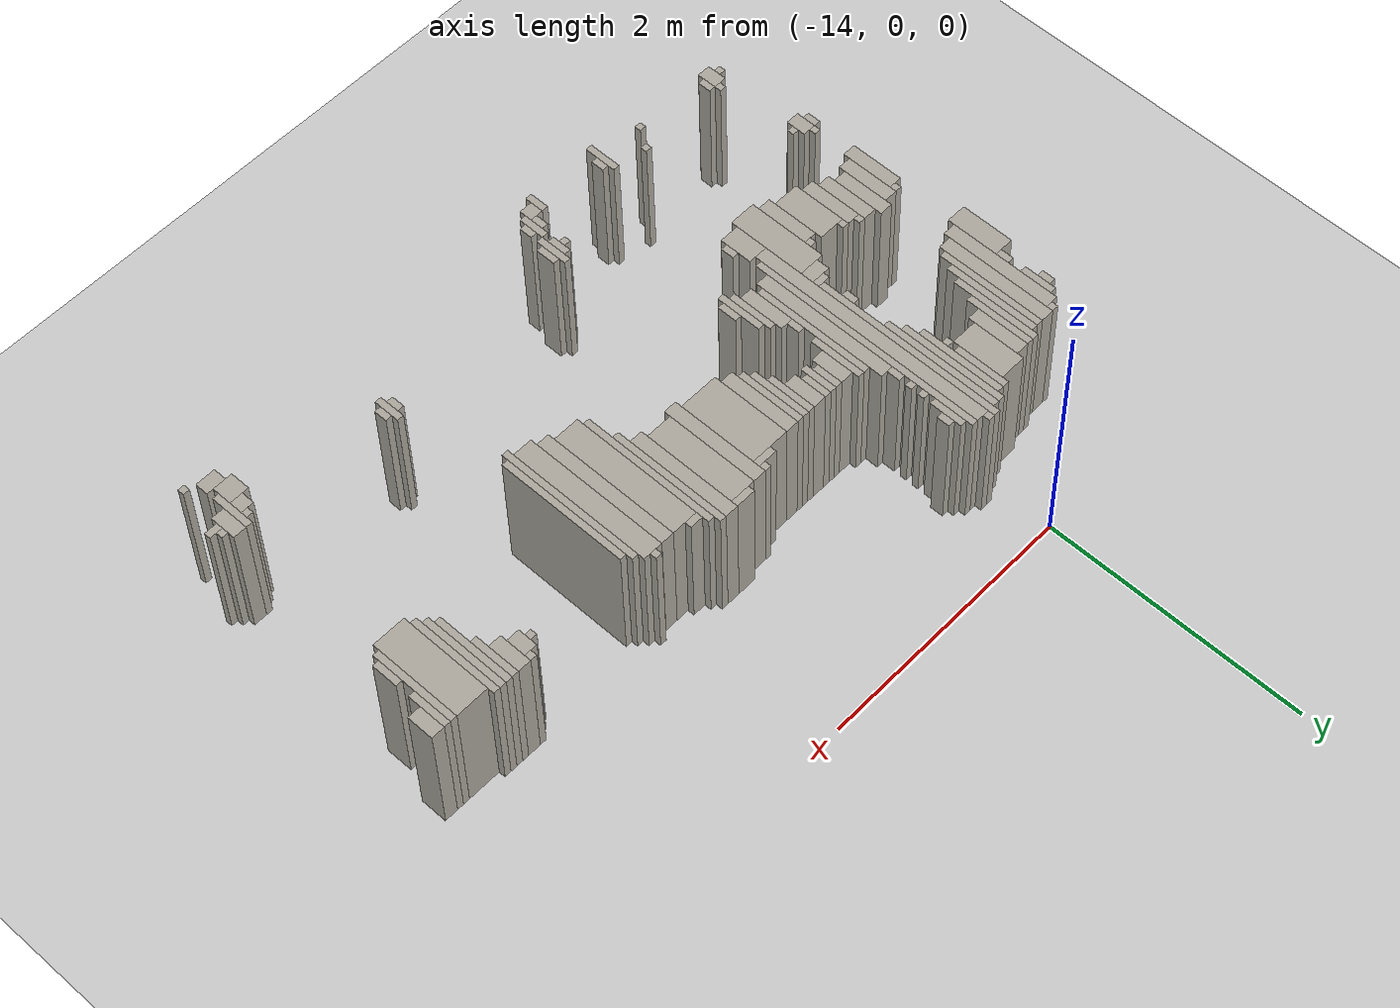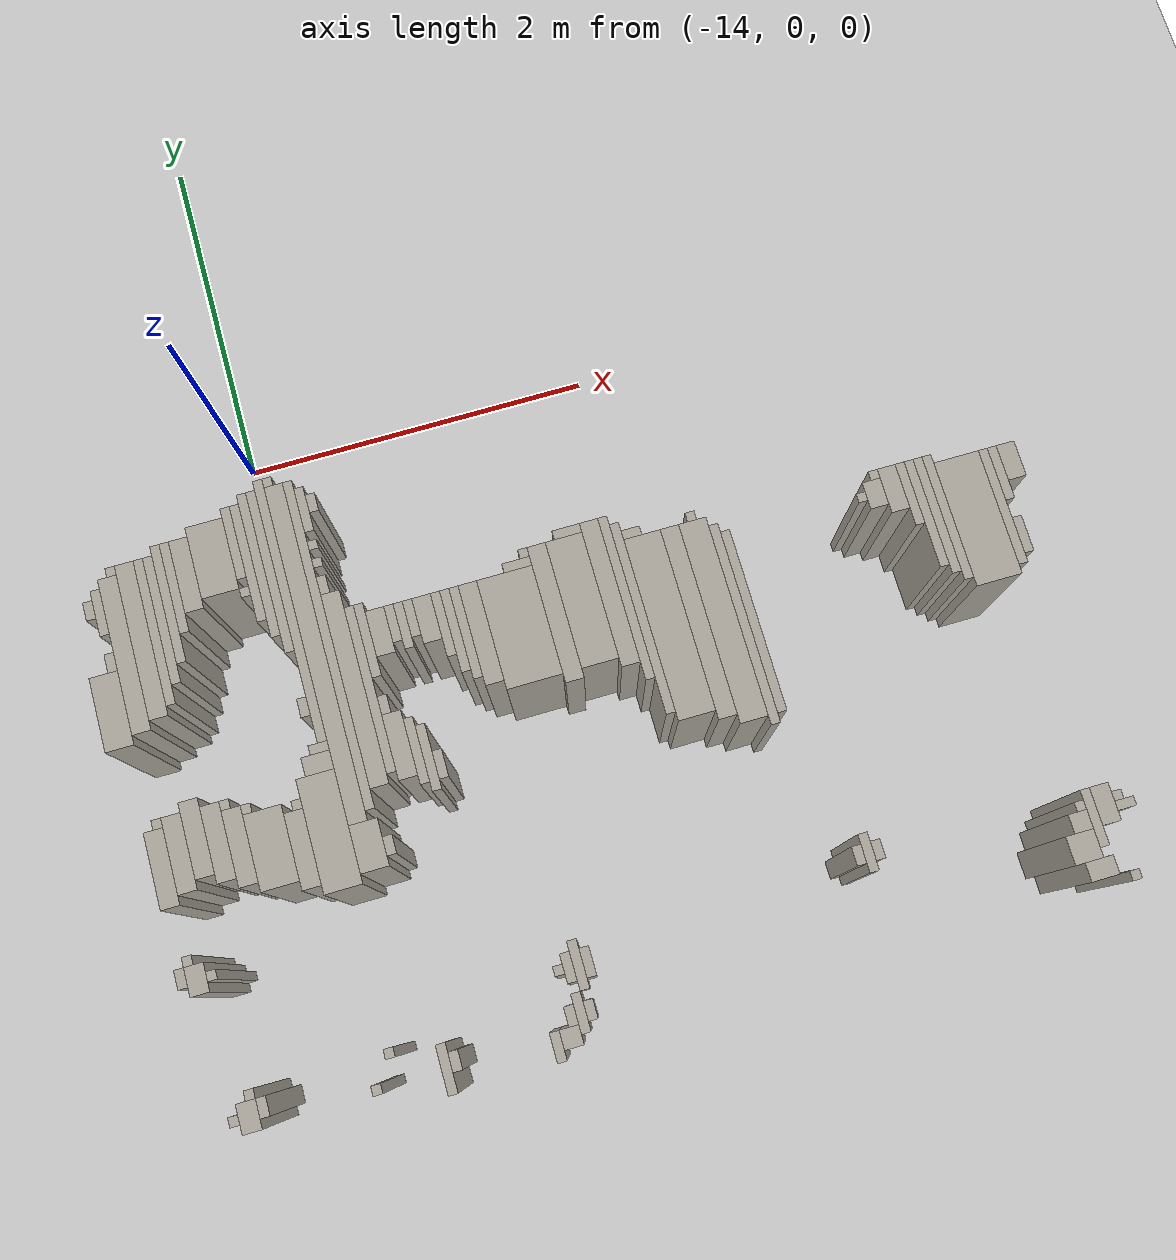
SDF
<sdf version="1.6">
 <world name="fr079_office">
  <include><uri>model://sun</uri></include>
  <include><uri>model://ground_plane</uri></include>
  <model name="fr079_office_walls">
   <static>true</static>
   <link name="w1039">
    <pose>-13.673 -3.581 0.500 0 0 0</pose>
    <collision name="c"><geometry><box><size>0.050 0.250 1.000</size></box></geometry></collision>
    <visual name="v">
     <geometry><box><size>0.050 0.250 1.000</size></box></geometry>
     <material><ambient>0.68 0.66 0.62 1</ambient><diffuse>0.68 0.66 0.62 1</diffuse></material>
    </visual>
   </link>
   <link name="w1040">
    <pose>-13.123 -3.631 0.500 0 0 0</pose>
    <collision name="c"><geometry><box><size>0.050 0.150 1.000</size></box></geometry></collision>
    <visual name="v">
     <geometry><box><size>0.050 0.150 1.000</size></box></geometry>
     <material><ambient>0.68 0.66 0.62 1</ambient><diffuse>0.68 0.66 0.62 1</diffuse></material>
    </visual>
   </link>
   <link name="w1054">
    <pose>-13.048 -3.606 0.500 0 0 0</pose>
    <collision name="c"><geometry><box><size>0.100 0.100 1.000</size></box></geometry></collision>
    <visual name="v">
     <geometry><box><size>0.100 0.100 1.000</size></box></geometry>
     <material><ambient>0.68 0.66 0.62 1</ambient><diffuse>0.68 0.66 0.62 1</diffuse></material>
    </visual>
   </link>
   <link name="w1055">
    <pose>-10.123 -3.631 0.500 0 0 0</pose>
    <collision name="c"><geometry><box><size>0.050 0.050 1.000</size></box></geometry></collision>
    <visual name="v">
     <geometry><box><size>0.050 0.050 1.000</size></box></geometry>
     <material><ambient>0.68 0.66 0.62 1</ambient><diffuse>0.68 0.66 0.62 1</diffuse></material>
    </visual>
   </link>
   <link name="w1061">
    <pose>-14.648 -3.531 0.500 0 0 0</pose>
    <collision name="c"><geometry><box><size>0.100 0.150 1.000</size></box></geometry></collision>
    <visual name="v">
     <geometry><box><size>0.100 0.150 1.000</size></box></geometry>
     <material><ambient>0.68 0.66 0.62 1</ambient><diffuse>0.68 0.66 0.62 1</diffuse></material>
    </visual>
   </link>
   <link name="w1062">
    <pose>-14.023 -3.581 0.500 0 0 0</pose>
    <collision name="c"><geometry><box><size>0.050 0.050 1.000</size></box></geometry></collision>
    <visual name="v">
     <geometry><box><size>0.050 0.050 1.000</size></box></geometry>
     <material><ambient>0.68 0.66 0.62 1</ambient><diffuse>0.68 0.66 0.62 1</diffuse></material>
    </visual>
   </link>
   <link name="w1063">
    <pose>-13.623 -3.556 0.500 0 0 0</pose>
    <collision name="c"><geometry><box><size>0.050 0.100 1.000</size></box></geometry></collision>
    <visual name="v">
     <geometry><box><size>0.050 0.100 1.000</size></box></geometry>
     <material><ambient>0.68 0.66 0.62 1</ambient><diffuse>0.68 0.66 0.62 1</diffuse></material>
    </visual>
   </link>
   <link name="w1064">
    <pose>-12.973 -3.506 0.500 0 0 0</pose>
    <collision name="c"><geometry><box><size>0.050 0.200 1.000</size></box></geometry></collision>
    <visual name="v">
     <geometry><box><size>0.050 0.200 1.000</size></box></geometry>
     <material><ambient>0.68 0.66 0.62 1</ambient><diffuse>0.68 0.66 0.62 1</diffuse></material>
    </visual>
   </link>
   <link name="w1065">
    <pose>-10.273 -3.556 0.500 0 0 0</pose>
    <collision name="c"><geometry><box><size>0.150 0.100 1.000</size></box></geometry></collision>
    <visual name="v">
     <geometry><box><size>0.150 0.100 1.000</size></box></geometry>
     <material><ambient>0.68 0.66 0.62 1</ambient><diffuse>0.68 0.66 0.62 1</diffuse></material>
    </visual>
   </link>
   <link name="w1073">
    <pose>-14.723 -3.531 0.500 0 0 0</pose>
    <collision name="c"><geometry><box><size>0.050 0.050 1.000</size></box></geometry></collision>
    <visual name="v">
     <geometry><box><size>0.050 0.050 1.000</size></box></geometry>
     <material><ambient>0.68 0.66 0.62 1</ambient><diffuse>0.68 0.66 0.62 1</diffuse></material>
    </visual>
   </link>
   <link name="w1074">
    <pose>-14.573 -3.506 0.500 0 0 0</pose>
    <collision name="c"><geometry><box><size>0.050 0.100 1.000</size></box></geometry></collision>
    <visual name="v">
     <geometry><box><size>0.050 0.100 1.000</size></box></geometry>
     <material><ambient>0.68 0.66 0.62 1</ambient><diffuse>0.68 0.66 0.62 1</diffuse></material>
    </visual>
   </link>
   <link name="w1075">
    <pose>-13.023 -3.506 0.500 0 0 0</pose>
    <collision name="c"><geometry><box><size>0.050 0.100 1.000</size></box></geometry></collision>
    <visual name="v">
     <geometry><box><size>0.050 0.100 1.000</size></box></geometry>
     <material><ambient>0.68 0.66 0.62 1</ambient><diffuse>0.68 0.66 0.62 1</diffuse></material>
    </visual>
   </link>
   <link name="w1076">
    <pose>-12.923 -3.506 0.500 0 0 0</pose>
    <collision name="c"><geometry><box><size>0.050 0.100 1.000</size></box></geometry></collision>
    <visual name="v">
     <geometry><box><size>0.050 0.100 1.000</size></box></geometry>
     <material><ambient>0.68 0.66 0.62 1</ambient><diffuse>0.68 0.66 0.62 1</diffuse></material>
    </visual>
   </link>
   <link name="w1079">
    <pose>-10.323 -3.431 0.500 0 0 0</pose>
    <collision name="c"><geometry><box><size>0.150 0.150 1.000</size></box></geometry></collision>
    <visual name="v">
     <geometry><box><size>0.150 0.150 1.000</size></box></geometry>
     <material><ambient>0.68 0.66 0.62 1</ambient><diffuse>0.68 0.66 0.62 1</diffuse></material>
    </visual>
   </link>
   <link name="w1086">
    <pose>-14.623 -3.431 0.500 0 0 0</pose>
    <collision name="c"><geometry><box><size>0.050 0.050 1.000</size></box></geometry></collision>
    <visual name="v">
     <geometry><box><size>0.050 0.050 1.000</size></box></geometry>
     <material><ambient>0.68 0.66 0.62 1</ambient><diffuse>0.68 0.66 0.62 1</diffuse></material>
    </visual>
   </link>
   <link name="w1087">
    <pose>-13.923 -3.431 0.500 0 0 0</pose>
    <collision name="c"><geometry><box><size>0.050 0.050 1.000</size></box></geometry></collision>
    <visual name="v">
     <geometry><box><size>0.050 0.050 1.000</size></box></geometry>
     <material><ambient>0.68 0.66 0.62 1</ambient><diffuse>0.68 0.66 0.62 1</diffuse></material>
    </visual>
   </link>
   <link name="w1088">
    <pose>-10.223 -3.306 0.500 0 0 0</pose>
    <collision name="c"><geometry><box><size>0.050 0.300 1.000</size></box></geometry></collision>
    <visual name="v">
     <geometry><box><size>0.050 0.300 1.000</size></box></geometry>
     <material><ambient>0.68 0.66 0.62 1</ambient><diffuse>0.68 0.66 0.62 1</diffuse></material>
    </visual>
   </link>
   <link name="w1094">
    <pose>-12.923 -3.281 0.500 0 0 0</pose>
    <collision name="c"><geometry><box><size>0.050 0.250 1.000</size></box></geometry></collision>
    <visual name="v">
     <geometry><box><size>0.050 0.250 1.000</size></box></geometry>
     <material><ambient>0.68 0.66 0.62 1</ambient><diffuse>0.68 0.66 0.62 1</diffuse></material>
    </visual>
   </link>
   <link name="w1099">
    <pose>-12.973 -3.281 0.500 0 0 0</pose>
    <collision name="c"><geometry><box><size>0.050 0.150 1.000</size></box></geometry></collision>
    <visual name="v">
     <geometry><box><size>0.050 0.150 1.000</size></box></geometry>
     <material><ambient>0.68 0.66 0.62 1</ambient><diffuse>0.68 0.66 0.62 1</diffuse></material>
    </visual>
   </link>
   <link name="w1100">
    <pose>-12.873 -3.281 0.500 0 0 0</pose>
    <collision name="c"><geometry><box><size>0.050 0.150 1.000</size></box></geometry></collision>
    <visual name="v">
     <geometry><box><size>0.050 0.150 1.000</size></box></geometry>
     <material><ambient>0.68 0.66 0.62 1</ambient><diffuse>0.68 0.66 0.62 1</diffuse></material>
    </visual>
   </link>
   <link name="w1101">
    <pose>-10.298 -3.306 0.500 0 0 0</pose>
    <collision name="c"><geometry><box><size>0.100 0.100 1.000</size></box></geometry></collision>
    <visual name="v">
     <geometry><box><size>0.100 0.100 1.000</size></box></geometry>
     <material><ambient>0.68 0.66 0.62 1</ambient><diffuse>0.68 0.66 0.62 1</diffuse></material>
    </visual>
   </link>
   <link name="w1102">
    <pose>-10.148 -3.256 0.500 0 0 0</pose>
    <collision name="c"><geometry><box><size>0.100 0.200 1.000</size></box></geometry></collision>
    <visual name="v">
     <geometry><box><size>0.100 0.200 1.000</size></box></geometry>
     <material><ambient>0.68 0.66 0.62 1</ambient><diffuse>0.68 0.66 0.62 1</diffuse></material>
    </visual>
   </link>
   <link name="w1107">
    <pose>-13.023 -3.281 0.500 0 0 0</pose>
    <collision name="c"><geometry><box><size>0.050 0.050 1.000</size></box></geometry></collision>
    <visual name="v">
     <geometry><box><size>0.050 0.050 1.000</size></box></geometry>
     <material><ambient>0.68 0.66 0.62 1</ambient><diffuse>0.68 0.66 0.62 1</diffuse></material>
    </visual>
   </link>
   <link name="w1108">
    <pose>-10.048 -3.281 0.500 0 0 0</pose>
    <collision name="c"><geometry><box><size>0.100 0.050 1.000</size></box></geometry></collision>
    <visual name="v">
     <geometry><box><size>0.100 0.050 1.000</size></box></geometry>
     <material><ambient>0.68 0.66 0.62 1</ambient><diffuse>0.68 0.66 0.62 1</diffuse></material>
    </visual>
   </link>
   <link name="w1114">
    <pose>-11.373 -3.156 0.500 0 0 0</pose>
    <collision name="c"><geometry><box><size>0.050 0.200 1.000</size></box></geometry></collision>
    <visual name="v">
     <geometry><box><size>0.050 0.200 1.000</size></box></geometry>
     <material><ambient>0.68 0.66 0.62 1</ambient><diffuse>0.68 0.66 0.62 1</diffuse></material>
    </visual>
   </link>
   <link name="w1115">
    <pose>-10.273 -3.231 0.500 0 0 0</pose>
    <collision name="c"><geometry><box><size>0.050 0.050 1.000</size></box></geometry></collision>
    <visual name="v">
     <geometry><box><size>0.050 0.050 1.000</size></box></geometry>
     <material><ambient>0.68 0.66 0.62 1</ambient><diffuse>0.68 0.66 0.62 1</diffuse></material>
    </visual>
   </link>
   <link name="w1116">
    <pose>-10.073 -3.231 0.500 0 0 0</pose>
    <collision name="c"><geometry><box><size>0.050 0.050 1.000</size></box></geometry></collision>
    <visual name="v">
     <geometry><box><size>0.050 0.050 1.000</size></box></geometry>
     <material><ambient>0.68 0.66 0.62 1</ambient><diffuse>0.68 0.66 0.62 1</diffuse></material>
    </visual>
   </link>
   <link name="w1118">
    <pose>-11.423 -3.156 0.500 0 0 0</pose>
    <collision name="c"><geometry><box><size>0.050 0.100 1.000</size></box></geometry></collision>
    <visual name="v">
     <geometry><box><size>0.050 0.100 1.000</size></box></geometry>
     <material><ambient>0.68 0.66 0.62 1</ambient><diffuse>0.68 0.66 0.62 1</diffuse></material>
    </visual>
   </link>
   <link name="w1119">
    <pose>-11.323 -3.156 0.500 0 0 0</pose>
    <collision name="c"><geometry><box><size>0.050 0.100 1.000</size></box></geometry></collision>
    <visual name="v">
     <geometry><box><size>0.050 0.100 1.000</size></box></geometry>
     <material><ambient>0.68 0.66 0.62 1</ambient><diffuse>0.68 0.66 0.62 1</diffuse></material>
    </visual>
   </link>
   <link name="w1172">
    <pose>-14.748 -2.831 0.500 0 0 0</pose>
    <collision name="c"><geometry><box><size>0.100 0.150 1.000</size></box></geometry></collision>
    <visual name="v">
     <geometry><box><size>0.100 0.150 1.000</size></box></geometry>
     <material><ambient>0.68 0.66 0.62 1</ambient><diffuse>0.68 0.66 0.62 1</diffuse></material>
    </visual>
   </link>
   <link name="w1184">
    <pose>-14.823 -2.806 0.500 0 0 0</pose>
    <collision name="c"><geometry><box><size>0.050 0.100 1.000</size></box></geometry></collision>
    <visual name="v">
     <geometry><box><size>0.050 0.100 1.000</size></box></geometry>
     <material><ambient>0.68 0.66 0.62 1</ambient><diffuse>0.68 0.66 0.62 1</diffuse></material>
    </visual>
   </link>
   <link name="w1185">
    <pose>-14.673 -2.831 0.500 0 0 0</pose>
    <collision name="c"><geometry><box><size>0.050 0.050 1.000</size></box></geometry></collision>
    <visual name="v">
     <geometry><box><size>0.050 0.050 1.000</size></box></geometry>
     <material><ambient>0.68 0.66 0.62 1</ambient><diffuse>0.68 0.66 0.62 1</diffuse></material>
    </visual>
   </link>
   <link name="w1208">
    <pose>-14.773 -2.731 0.500 0 0 0</pose>
    <collision name="c"><geometry><box><size>0.050 0.050 1.000</size></box></geometry></collision>
    <visual name="v">
     <geometry><box><size>0.050 0.050 1.000</size></box></geometry>
     <material><ambient>0.68 0.66 0.62 1</ambient><diffuse>0.68 0.66 0.62 1</diffuse></material>
    </visual>
   </link>
   <link name="w1247">
    <pose>-13.948 -2.306 0.500 0 0 0</pose>
    <collision name="c"><geometry><box><size>0.200 0.600 1.000</size></box></geometry></collision>
    <visual name="v">
     <geometry><box><size>0.200 0.600 1.000</size></box></geometry>
     <material><ambient>0.68 0.66 0.62 1</ambient><diffuse>0.68 0.66 0.62 1</diffuse></material>
    </visual>
   </link>
   <link name="w1263">
    <pose>-14.098 -2.356 0.500 0 0 0</pose>
    <collision name="c"><geometry><box><size>0.100 0.400 1.000</size></box></geometry></collision>
    <visual name="v">
     <geometry><box><size>0.100 0.400 1.000</size></box></geometry>
     <material><ambient>0.68 0.66 0.62 1</ambient><diffuse>0.68 0.66 0.62 1</diffuse></material>
    </visual>
   </link>
   <link name="w1264">
    <pose>-13.773 -2.431 0.500 0 0 0</pose>
    <collision name="c"><geometry><box><size>0.150 0.250 1.000</size></box></geometry></collision>
    <visual name="v">
     <geometry><box><size>0.150 0.250 1.000</size></box></geometry>
     <material><ambient>0.68 0.66 0.62 1</ambient><diffuse>0.68 0.66 0.62 1</diffuse></material>
    </visual>
   </link>
   <link name="w1278">
    <pose>-14.248 -2.306 0.500 0 0 0</pose>
    <collision name="c"><geometry><box><size>0.200 0.400 1.000</size></box></geometry></collision>
    <visual name="v">
     <geometry><box><size>0.200 0.400 1.000</size></box></geometry>
     <material><ambient>0.68 0.66 0.62 1</ambient><diffuse>0.68 0.66 0.62 1</diffuse></material>
    </visual>
   </link>
   <link name="w1279">
    <pose>-13.673 -2.456 0.500 0 0 0</pose>
    <collision name="c"><geometry><box><size>0.050 0.100 1.000</size></box></geometry></collision>
    <visual name="v">
     <geometry><box><size>0.050 0.100 1.000</size></box></geometry>
     <material><ambient>0.68 0.66 0.62 1</ambient><diffuse>0.68 0.66 0.62 1</diffuse></material>
    </visual>
   </link>
   <link name="w1294">
    <pose>-14.798 -2.256 0.500 0 0 0</pose>
    <collision name="c"><geometry><box><size>0.100 0.400 1.000</size></box></geometry></collision>
    <visual name="v">
     <geometry><box><size>0.100 0.400 1.000</size></box></geometry>
     <material><ambient>0.68 0.66 0.62 1</ambient><diffuse>0.68 0.66 0.62 1</diffuse></material>
    </visual>
   </link>
   <link name="w1295">
    <pose>-14.398 -2.256 0.500 0 0 0</pose>
    <collision name="c"><geometry><box><size>0.100 0.400 1.000</size></box></geometry></collision>
    <visual name="v">
     <geometry><box><size>0.100 0.400 1.000</size></box></geometry>
     <material><ambient>0.68 0.66 0.62 1</ambient><diffuse>0.68 0.66 0.62 1</diffuse></material>
    </visual>
   </link>
   <link name="w1315">
    <pose>-14.698 -2.206 0.500 0 0 0</pose>
    <collision name="c"><geometry><box><size>0.100 0.400 1.000</size></box></geometry></collision>
    <visual name="v">
     <geometry><box><size>0.100 0.400 1.000</size></box></geometry>
     <material><ambient>0.68 0.66 0.62 1</ambient><diffuse>0.68 0.66 0.62 1</diffuse></material>
    </visual>
   </link>
   <link name="w1316">
    <pose>-14.498 -2.206 0.500 0 0 0</pose>
    <collision name="c"><geometry><box><size>0.100 0.400 1.000</size></box></geometry></collision>
    <visual name="v">
     <geometry><box><size>0.100 0.400 1.000</size></box></geometry>
     <material><ambient>0.68 0.66 0.62 1</ambient><diffuse>0.68 0.66 0.62 1</diffuse></material>
    </visual>
   </link>
   <link name="w1317">
    <pose>-11.623 -1.856 0.500 0 0 0</pose>
    <collision name="c"><geometry><box><size>0.050 1.100 1.000</size></box></geometry></collision>
    <visual name="v">
     <geometry><box><size>0.050 1.100 1.000</size></box></geometry>
     <material><ambient>0.68 0.66 0.62 1</ambient><diffuse>0.68 0.66 0.62 1</diffuse></material>
    </visual>
   </link>
   <link name="w1332">
    <pose>-14.598 -2.156 0.500 0 0 0</pose>
    <collision name="c"><geometry><box><size>0.100 0.400 1.000</size></box></geometry></collision>
    <visual name="v">
     <geometry><box><size>0.100 0.400 1.000</size></box></geometry>
     <material><ambient>0.68 0.66 0.62 1</ambient><diffuse>0.68 0.66 0.62 1</diffuse></material>
    </visual>
   </link>
   <link name="w1333">
    <pose>-11.723 -1.806 0.500 0 0 0</pose>
    <collision name="c"><geometry><box><size>0.150 1.100 1.000</size></box></geometry></collision>
    <visual name="v">
     <geometry><box><size>0.150 1.100 1.000</size></box></geometry>
     <material><ambient>0.68 0.66 0.62 1</ambient><diffuse>0.68 0.66 0.62 1</diffuse></material>
    </visual>
   </link>
   <link name="w1334">
    <pose>-11.573 -1.856 0.500 0 0 0</pose>
    <collision name="c"><geometry><box><size>0.050 1.000 1.000</size></box></geometry></collision>
    <visual name="v">
     <geometry><box><size>0.050 1.000 1.000</size></box></geometry>
     <material><ambient>0.68 0.66 0.62 1</ambient><diffuse>0.68 0.66 0.62 1</diffuse></material>
    </visual>
   </link>
   <link name="w1348">
    <pose>-13.798 -1.381 0.500 0 0 0</pose>
    <collision name="c"><geometry><box><size>0.100 1.850 1.000</size></box></geometry></collision>
    <visual name="v">
     <geometry><box><size>0.100 1.850 1.000</size></box></geometry>
     <material><ambient>0.68 0.66 0.62 1</ambient><diffuse>0.68 0.66 0.62 1</diffuse></material>
    </visual>
   </link>
   <link name="w1349">
    <pose>-11.848 -1.781 0.500 0 0 0</pose>
    <collision name="c"><geometry><box><size>0.100 1.050 1.000</size></box></geometry></collision>
    <visual name="v">
     <geometry><box><size>0.100 1.050 1.000</size></box></geometry>
     <material><ambient>0.68 0.66 0.62 1</ambient><diffuse>0.68 0.66 0.62 1</diffuse></material>
    </visual>
   </link>
   <link name="w1364">
    <pose>-13.723 -1.356 0.500 0 0 0</pose>
    <collision name="c"><geometry><box><size>0.050 1.800 1.000</size></box></geometry></collision>
    <visual name="v">
     <geometry><box><size>0.050 1.800 1.000</size></box></geometry>
     <material><ambient>0.68 0.66 0.62 1</ambient><diffuse>0.68 0.66 0.62 1</diffuse></material>
    </visual>
   </link>
   <link name="w1365">
    <pose>-13.373 -2.081 0.500 0 0 0</pose>
    <collision name="c"><geometry><box><size>0.050 0.350 1.000</size></box></geometry></collision>
    <visual name="v">
     <geometry><box><size>0.050 0.350 1.000</size></box></geometry>
     <material><ambient>0.68 0.66 0.62 1</ambient><diffuse>0.68 0.66 0.62 1</diffuse></material>
    </visual>
   </link>
   <link name="w1366">
    <pose>-11.998 -1.756 0.500 0 0 0</pose>
    <collision name="c"><geometry><box><size>0.200 1.000 1.000</size></box></geometry></collision>
    <visual name="v">
     <geometry><box><size>0.200 1.000 1.000</size></box></geometry>
     <material><ambient>0.68 0.66 0.62 1</ambient><diffuse>0.68 0.66 0.62 1</diffuse></material>
    </visual>
   </link>
   <link name="w1385">
    <pose>-13.423 -2.031 0.500 0 0 0</pose>
    <collision name="c"><geometry><box><size>0.050 0.350 1.000</size></box></geometry></collision>
    <visual name="v">
     <geometry><box><size>0.050 0.350 1.000</size></box></geometry>
     <material><ambient>0.68 0.66 0.62 1</ambient><diffuse>0.68 0.66 0.62 1</diffuse></material>
    </visual>
   </link>
   <link name="w1386">
    <pose>-13.323 -2.131 0.500 0 0 0</pose>
    <collision name="c"><geometry><box><size>0.050 0.150 1.000</size></box></geometry></collision>
    <visual name="v">
     <geometry><box><size>0.050 0.150 1.000</size></box></geometry>
     <material><ambient>0.68 0.66 0.62 1</ambient><diffuse>0.68 0.66 0.62 1</diffuse></material>
    </visual>
   </link>
   <link name="w1387">
    <pose>-12.123 -1.681 0.500 0 0 0</pose>
    <collision name="c"><geometry><box><size>0.050 1.050 1.000</size></box></geometry></collision>
    <visual name="v">
     <geometry><box><size>0.050 1.050 1.000</size></box></geometry>
     <material><ambient>0.68 0.66 0.62 1</ambient><diffuse>0.68 0.66 0.62 1</diffuse></material>
    </visual>
   </link>
   <link name="w1403">
    <pose>-14.073 -2.131 0.500 0 0 0</pose>
    <collision name="c"><geometry><box><size>0.050 0.050 1.000</size></box></geometry></collision>
    <visual name="v">
     <geometry><box><size>0.050 0.050 1.000</size></box></geometry>
     <material><ambient>0.68 0.66 0.62 1</ambient><diffuse>0.68 0.66 0.62 1</diffuse></material>
    </visual>
   </link>
   <link name="w1404">
    <pose>-13.648 -1.631 0.500 0 0 0</pose>
    <collision name="c"><geometry><box><size>0.100 1.050 1.000</size></box></geometry></collision>
    <visual name="v">
     <geometry><box><size>0.100 1.050 1.000</size></box></geometry>
     <material><ambient>0.68 0.66 0.62 1</ambient><diffuse>0.68 0.66 0.62 1</diffuse></material>
    </visual>
   </link>
   <link name="w1405">
    <pose>-13.498 -1.981 0.500 0 0 0</pose>
    <collision name="c"><geometry><box><size>0.100 0.350 1.000</size></box></geometry></collision>
    <visual name="v">
     <geometry><box><size>0.100 0.350 1.000</size></box></geometry>
     <material><ambient>0.68 0.66 0.62 1</ambient><diffuse>0.68 0.66 0.62 1</diffuse></material>
    </visual>
   </link>
   <link name="w1419">
    <pose>-14.323 -2.081 0.500 0 0 0</pose>
    <collision name="c"><geometry><box><size>0.050 0.050 1.000</size></box></geometry></collision>
    <visual name="v">
     <geometry><box><size>0.050 0.050 1.000</size></box></geometry>
     <material><ambient>0.68 0.66 0.62 1</ambient><diffuse>0.68 0.66 0.62 1</diffuse></material>
    </visual>
   </link>
   <link name="w1420">
    <pose>-13.573 -1.656 0.500 0 0 0</pose>
    <collision name="c"><geometry><box><size>0.050 0.900 1.000</size></box></geometry></collision>
    <visual name="v">
     <geometry><box><size>0.050 0.900 1.000</size></box></geometry>
     <material><ambient>0.68 0.66 0.62 1</ambient><diffuse>0.68 0.66 0.62 1</diffuse></material>
    </visual>
   </link>
   <link name="w1433">
    <pose>-14.773 -2.031 0.500 0 0 0</pose>
    <collision name="c"><geometry><box><size>0.050 0.050 1.000</size></box></geometry></collision>
    <visual name="v">
     <geometry><box><size>0.050 0.050 1.000</size></box></geometry>
     <material><ambient>0.68 0.66 0.62 1</ambient><diffuse>0.68 0.66 0.62 1</diffuse></material>
    </visual>
   </link>
   <link name="w1434">
    <pose>-14.423 -2.031 0.500 0 0 0</pose>
    <collision name="c"><geometry><box><size>0.050 0.050 1.000</size></box></geometry></collision>
    <visual name="v">
     <geometry><box><size>0.050 0.050 1.000</size></box></geometry>
     <material><ambient>0.68 0.66 0.62 1</ambient><diffuse>0.68 0.66 0.62 1</diffuse></material>
    </visual>
   </link>
   <link name="w1447">
    <pose>-13.923 -1.956 0.500 0 0 0</pose>
    <collision name="c"><geometry><box><size>0.150 0.100 1.000</size></box></geometry></collision>
    <visual name="v">
     <geometry><box><size>0.150 0.100 1.000</size></box></geometry>
     <material><ambient>0.68 0.66 0.62 1</ambient><diffuse>0.68 0.66 0.62 1</diffuse></material>
    </visual>
   </link>
   <link name="w1448">
    <pose>-12.173 -1.556 0.500 0 0 0</pose>
    <collision name="c"><geometry><box><size>0.050 0.900 1.000</size></box></geometry></collision>
    <visual name="v">
     <geometry><box><size>0.050 0.900 1.000</size></box></geometry>
     <material><ambient>0.68 0.66 0.62 1</ambient><diffuse>0.68 0.66 0.62 1</diffuse></material>
    </visual>
   </link>
   <link name="w1449">
    <pose>-10.273 -1.656 0.500 0 0 0</pose>
    <collision name="c"><geometry><box><size>0.250 0.700 1.000</size></box></geometry></collision>
    <visual name="v">
     <geometry><box><size>0.250 0.700 1.000</size></box></geometry>
     <material><ambient>0.68 0.66 0.62 1</ambient><diffuse>0.68 0.66 0.62 1</diffuse></material>
    </visual>
   </link>
   <link name="w1462">
    <pose>-10.423 -1.606 0.500 0 0 0</pose>
    <collision name="c"><geometry><box><size>0.050 0.700 1.000</size></box></geometry></collision>
    <visual name="v">
     <geometry><box><size>0.050 0.700 1.000</size></box></geometry>
     <material><ambient>0.68 0.66 0.62 1</ambient><diffuse>0.68 0.66 0.62 1</diffuse></material>
    </visual>
   </link>
   <link name="w1463">
    <pose>-10.123 -1.631 0.500 0 0 0</pose>
    <collision name="c"><geometry><box><size>0.050 0.650 1.000</size></box></geometry></collision>
    <visual name="v">
     <geometry><box><size>0.050 0.650 1.000</size></box></geometry>
     <material><ambient>0.68 0.66 0.62 1</ambient><diffuse>0.68 0.66 0.62 1</diffuse></material>
    </visual>
   </link>
   <link name="w1478">
    <pose>-13.898 -1.881 0.500 0 0 0</pose>
    <collision name="c"><geometry><box><size>0.100 0.050 1.000</size></box></geometry></collision>
    <visual name="v">
     <geometry><box><size>0.100 0.050 1.000</size></box></geometry>
     <material><ambient>0.68 0.66 0.62 1</ambient><diffuse>0.68 0.66 0.62 1</diffuse></material>
    </visual>
   </link>
   <link name="w1479">
    <pose>-12.548 -1.531 0.500 0 0 0</pose>
    <collision name="c"><geometry><box><size>0.100 0.750 1.000</size></box></geometry></collision>
    <visual name="v">
     <geometry><box><size>0.100 0.750 1.000</size></box></geometry>
     <material><ambient>0.68 0.66 0.62 1</ambient><diffuse>0.68 0.66 0.62 1</diffuse></material>
    </visual>
   </link>
   <link name="w1480">
    <pose>-12.248 -1.506 0.500 0 0 0</pose>
    <collision name="c"><geometry><box><size>0.100 0.800 1.000</size></box></geometry></collision>
    <visual name="v">
     <geometry><box><size>0.100 0.800 1.000</size></box></geometry>
     <material><ambient>0.68 0.66 0.62 1</ambient><diffuse>0.68 0.66 0.62 1</diffuse></material>
    </visual>
   </link>
   <link name="w1481">
    <pose>-10.473 -1.581 0.500 0 0 0</pose>
    <collision name="c"><geometry><box><size>0.050 0.650 1.000</size></box></geometry></collision>
    <visual name="v">
     <geometry><box><size>0.050 0.650 1.000</size></box></geometry>
     <material><ambient>0.68 0.66 0.62 1</ambient><diffuse>0.68 0.66 0.62 1</diffuse></material>
    </visual>
   </link>
   <link name="w1482">
    <pose>-10.073 -1.806 0.500 0 0 0</pose>
    <collision name="c"><geometry><box><size>0.050 0.200 1.000</size></box></geometry></collision>
    <visual name="v">
     <geometry><box><size>0.050 0.200 1.000</size></box></geometry>
     <material><ambient>0.68 0.66 0.62 1</ambient><diffuse>0.68 0.66 0.62 1</diffuse></material>
    </visual>
   </link>
   <link name="w1496">
    <pose>-13.873 -1.131 0.500 0 0 0</pose>
    <collision name="c"><geometry><box><size>0.050 1.450 1.000</size></box></geometry></collision>
    <visual name="v">
     <geometry><box><size>0.050 1.450 1.000</size></box></geometry>
     <material><ambient>0.68 0.66 0.62 1</ambient><diffuse>0.68 0.66 0.62 1</diffuse></material>
    </visual>
   </link>
   <link name="w1497">
    <pose>-12.748 -1.556 0.500 0 0 0</pose>
    <collision name="c"><geometry><box><size>0.300 0.600 1.000</size></box></geometry></collision>
    <visual name="v">
     <geometry><box><size>0.300 0.600 1.000</size></box></geometry>
     <material><ambient>0.68 0.66 0.62 1</ambient><diffuse>0.68 0.66 0.62 1</diffuse></material>
    </visual>
   </link>
   <link name="w1498">
    <pose>-12.398 -1.506 0.500 0 0 0</pose>
    <collision name="c"><geometry><box><size>0.200 0.700 1.000</size></box></geometry></collision>
    <visual name="v">
     <geometry><box><size>0.200 0.700 1.000</size></box></geometry>
     <material><ambient>0.68 0.66 0.62 1</ambient><diffuse>0.68 0.66 0.62 1</diffuse></material>
    </visual>
   </link>
   <link name="w1499">
    <pose>-10.523 -1.556 0.500 0 0 0</pose>
    <collision name="c"><geometry><box><size>0.050 0.600 1.000</size></box></geometry></collision>
    <visual name="v">
     <geometry><box><size>0.050 0.600 1.000</size></box></geometry>
     <material><ambient>0.68 0.66 0.62 1</ambient><diffuse>0.68 0.66 0.62 1</diffuse></material>
    </visual>
   </link>
   <link name="w1512">
    <pose>-13.523 -1.756 0.500 0 0 0</pose>
    <collision name="c"><geometry><box><size>0.050 0.100 1.000</size></box></geometry></collision>
    <visual name="v">
     <geometry><box><size>0.050 0.100 1.000</size></box></geometry>
     <material><ambient>0.68 0.66 0.62 1</ambient><diffuse>0.68 0.66 0.62 1</diffuse></material>
    </visual>
   </link>
   <link name="w1513">
    <pose>-12.948 -1.531 0.500 0 0 0</pose>
    <collision name="c"><geometry><box><size>0.100 0.550 1.000</size></box></geometry></collision>
    <visual name="v">
     <geometry><box><size>0.100 0.550 1.000</size></box></geometry>
     <material><ambient>0.68 0.66 0.62 1</ambient><diffuse>0.68 0.66 0.62 1</diffuse></material>
    </visual>
   </link>
   <link name="w1527">
    <pose>-13.023 -1.506 0.500 0 0 0</pose>
    <collision name="c"><geometry><box><size>0.050 0.500 1.000</size></box></geometry></collision>
    <visual name="v">
     <geometry><box><size>0.050 0.500 1.000</size></box></geometry>
     <material><ambient>0.68 0.66 0.62 1</ambient><diffuse>0.68 0.66 0.62 1</diffuse></material>
    </visual>
   </link>
   <link name="w1545">
    <pose>-13.923 -1.656 0.500 0 0 0</pose>
    <collision name="c"><geometry><box><size>0.050 0.100 1.000</size></box></geometry></collision>
    <visual name="v">
     <geometry><box><size>0.050 0.100 1.000</size></box></geometry>
     <material><ambient>0.68 0.66 0.62 1</ambient><diffuse>0.68 0.66 0.62 1</diffuse></material>
    </visual>
   </link>
   <link name="w1546">
    <pose>-13.073 -1.481 0.500 0 0 0</pose>
    <collision name="c"><geometry><box><size>0.050 0.450 1.000</size></box></geometry></collision>
    <visual name="v">
     <geometry><box><size>0.050 0.450 1.000</size></box></geometry>
     <material><ambient>0.68 0.66 0.62 1</ambient><diffuse>0.68 0.66 0.62 1</diffuse></material>
    </visual>
   </link>
   <link name="w1600">
    <pose>-14.873 -1.406 0.500 0 0 0</pose>
    <collision name="c"><geometry><box><size>0.150 0.400 1.000</size></box></geometry></collision>
    <visual name="v">
     <geometry><box><size>0.150 0.400 1.000</size></box></geometry>
     <material><ambient>0.68 0.66 0.62 1</ambient><diffuse>0.68 0.66 0.62 1</diffuse></material>
    </visual>
   </link>
   <link name="w1601">
    <pose>-13.523 -1.406 0.500 0 0 0</pose>
    <collision name="c"><geometry><box><size>0.050 0.400 1.000</size></box></geometry></collision>
    <visual name="v">
     <geometry><box><size>0.050 0.400 1.000</size></box></geometry>
     <material><ambient>0.68 0.66 0.62 1</ambient><diffuse>0.68 0.66 0.62 1</diffuse></material>
    </visual>
   </link>
   <link name="w1602">
    <pose>-13.123 -1.431 0.500 0 0 0</pose>
    <collision name="c"><geometry><box><size>0.050 0.350 1.000</size></box></geometry></collision>
    <visual name="v">
     <geometry><box><size>0.050 0.350 1.000</size></box></geometry>
     <material><ambient>0.68 0.66 0.62 1</ambient><diffuse>0.68 0.66 0.62 1</diffuse></material>
    </visual>
   </link>
   <link name="w1603">
    <pose>-10.573 -1.431 0.500 0 0 0</pose>
    <collision name="c"><geometry><box><size>0.050 0.350 1.000</size></box></geometry></collision>
    <visual name="v">
     <geometry><box><size>0.050 0.350 1.000</size></box></geometry>
     <material><ambient>0.68 0.66 0.62 1</ambient><diffuse>0.68 0.66 0.62 1</diffuse></material>
    </visual>
   </link>
   <link name="w1604">
    <pose>-10.073 -1.456 0.500 0 0 0</pose>
    <collision name="c"><geometry><box><size>0.050 0.300 1.000</size></box></geometry></collision>
    <visual name="v">
     <geometry><box><size>0.050 0.300 1.000</size></box></geometry>
     <material><ambient>0.68 0.66 0.62 1</ambient><diffuse>0.68 0.66 0.62 1</diffuse></material>
    </visual>
   </link>
   <link name="w1632">
    <pose>-14.748 -1.131 0.500 0 0 0</pose>
    <collision name="c"><geometry><box><size>0.100 0.850 1.000</size></box></geometry></collision>
    <visual name="v">
     <geometry><box><size>0.100 0.850 1.000</size></box></geometry>
     <material><ambient>0.68 0.66 0.62 1</ambient><diffuse>0.68 0.66 0.62 1</diffuse></material>
    </visual>
   </link>
   <link name="w1659">
    <pose>-14.648 -1.081 0.500 0 0 0</pose>
    <collision name="c"><geometry><box><size>0.100 0.850 1.000</size></box></geometry></collision>
    <visual name="v">
     <geometry><box><size>0.100 0.850 1.000</size></box></geometry>
     <material><ambient>0.68 0.66 0.62 1</ambient><diffuse>0.68 0.66 0.62 1</diffuse></material>
    </visual>
   </link>
   <link name="w1660">
    <pose>-13.448 -1.381 0.500 0 0 0</pose>
    <collision name="c"><geometry><box><size>0.100 0.250 1.000</size></box></geometry></collision>
    <visual name="v">
     <geometry><box><size>0.100 0.250 1.000</size></box></geometry>
     <material><ambient>0.68 0.66 0.62 1</ambient><diffuse>0.68 0.66 0.62 1</diffuse></material>
    </visual>
   </link>
   <link name="w1661">
    <pose>-13.323 -1.381 0.500 0 0 0</pose>
    <collision name="c"><geometry><box><size>0.050 0.250 1.000</size></box></geometry></collision>
    <visual name="v">
     <geometry><box><size>0.050 0.250 1.000</size></box></geometry>
     <material><ambient>0.68 0.66 0.62 1</ambient><diffuse>0.68 0.66 0.62 1</diffuse></material>
    </visual>
   </link>
   <link name="w1662">
    <pose>-13.198 -1.381 0.500 0 0 0</pose>
    <collision name="c"><geometry><box><size>0.100 0.250 1.000</size></box></geometry></collision>
    <visual name="v">
     <geometry><box><size>0.100 0.250 1.000</size></box></geometry>
     <material><ambient>0.68 0.66 0.62 1</ambient><diffuse>0.68 0.66 0.62 1</diffuse></material>
    </visual>
   </link>
   <link name="w1663">
    <pose>-10.648 -1.381 0.500 0 0 0</pose>
    <collision name="c"><geometry><box><size>0.100 0.250 1.000</size></box></geometry></collision>
    <visual name="v">
     <geometry><box><size>0.100 0.250 1.000</size></box></geometry>
     <material><ambient>0.68 0.66 0.62 1</ambient><diffuse>0.68 0.66 0.62 1</diffuse></material>
    </visual>
   </link>
   <link name="w1664">
    <pose>-9.998 -1.406 0.500 0 0 0</pose>
    <collision name="c"><geometry><box><size>0.100 0.200 1.000</size></box></geometry></collision>
    <visual name="v">
     <geometry><box><size>0.100 0.200 1.000</size></box></geometry>
     <material><ambient>0.68 0.66 0.62 1</ambient><diffuse>0.68 0.66 0.62 1</diffuse></material>
    </visual>
   </link>
   <link name="w1683">
    <pose>-14.573 -1.056 0.500 0 0 0</pose>
    <collision name="c"><geometry><box><size>0.050 0.800 1.000</size></box></geometry></collision>
    <visual name="v">
     <geometry><box><size>0.050 0.800 1.000</size></box></geometry>
     <material><ambient>0.68 0.66 0.62 1</ambient><diffuse>0.68 0.66 0.62 1</diffuse></material>
    </visual>
   </link>
   <link name="w1684">
    <pose>-13.373 -1.356 0.500 0 0 0</pose>
    <collision name="c"><geometry><box><size>0.050 0.200 1.000</size></box></geometry></collision>
    <visual name="v">
     <geometry><box><size>0.050 0.200 1.000</size></box></geometry>
     <material><ambient>0.68 0.66 0.62 1</ambient><diffuse>0.68 0.66 0.62 1</diffuse></material>
    </visual>
   </link>
   <link name="w1685">
    <pose>-13.273 -1.356 0.500 0 0 0</pose>
    <collision name="c"><geometry><box><size>0.050 0.200 1.000</size></box></geometry></collision>
    <visual name="v">
     <geometry><box><size>0.050 0.200 1.000</size></box></geometry>
     <material><ambient>0.68 0.66 0.62 1</ambient><diffuse>0.68 0.66 0.62 1</diffuse></material>
    </visual>
   </link>
   <link name="w1686">
    <pose>-10.748 -1.381 0.500 0 0 0</pose>
    <collision name="c"><geometry><box><size>0.100 0.150 1.000</size></box></geometry></collision>
    <visual name="v">
     <geometry><box><size>0.100 0.150 1.000</size></box></geometry>
     <material><ambient>0.68 0.66 0.62 1</ambient><diffuse>0.68 0.66 0.62 1</diffuse></material>
    </visual>
   </link>
   <link name="w1695">
    <pose>-10.823 -1.381 0.500 0 0 0</pose>
    <collision name="c"><geometry><box><size>0.050 0.050 1.000</size></box></geometry></collision>
    <visual name="v">
     <geometry><box><size>0.050 0.050 1.000</size></box></geometry>
     <material><ambient>0.68 0.66 0.62 1</ambient><diffuse>0.68 0.66 0.62 1</diffuse></material>
    </visual>
   </link>
   <link name="w1704">
    <pose>-14.523 -1.006 0.500 0 0 0</pose>
    <collision name="c"><geometry><box><size>0.050 0.700 1.000</size></box></geometry></collision>
    <visual name="v">
     <geometry><box><size>0.050 0.700 1.000</size></box></geometry>
     <material><ambient>0.68 0.66 0.62 1</ambient><diffuse>0.68 0.66 0.62 1</diffuse></material>
    </visual>
   </link>
   <link name="w1705">
    <pose>-13.923 -0.906 0.500 0 0 0</pose>
    <collision name="c"><geometry><box><size>0.050 0.900 1.000</size></box></geometry></collision>
    <visual name="v">
     <geometry><box><size>0.050 0.900 1.000</size></box></geometry>
     <material><ambient>0.68 0.66 0.62 1</ambient><diffuse>0.68 0.66 0.62 1</diffuse></material>
    </visual>
   </link>
   <link name="w1720">
    <pose>-10.723 -1.281 0.500 0 0 0</pose>
    <collision name="c"><geometry><box><size>0.050 0.050 1.000</size></box></geometry></collision>
    <visual name="v">
     <geometry><box><size>0.050 0.050 1.000</size></box></geometry>
     <material><ambient>0.68 0.66 0.62 1</ambient><diffuse>0.68 0.66 0.62 1</diffuse></material>
    </visual>
   </link>
   <link name="w1729">
    <pose>-14.473 -0.931 0.500 0 0 0</pose>
    <collision name="c"><geometry><box><size>0.050 0.650 1.000</size></box></geometry></collision>
    <visual name="v">
     <geometry><box><size>0.050 0.650 1.000</size></box></geometry>
     <material><ambient>0.68 0.66 0.62 1</ambient><diffuse>0.68 0.66 0.62 1</diffuse></material>
    </visual>
   </link>
   <link name="w1730">
    <pose>-13.973 -0.856 0.500 0 0 0</pose>
    <collision name="c"><geometry><box><size>0.050 0.800 1.000</size></box></geometry></collision>
    <visual name="v">
     <geometry><box><size>0.050 0.800 1.000</size></box></geometry>
     <material><ambient>0.68 0.66 0.62 1</ambient><diffuse>0.68 0.66 0.62 1</diffuse></material>
    </visual>
   </link>
   <link name="w1731">
    <pose>-12.673 -1.231 0.500 0 0 0</pose>
    <collision name="c"><geometry><box><size>0.150 0.050 1.000</size></box></geometry></collision>
    <visual name="v">
     <geometry><box><size>0.150 0.050 1.000</size></box></geometry>
     <material><ambient>0.68 0.66 0.62 1</ambient><diffuse>0.68 0.66 0.62 1</diffuse></material>
    </visual>
   </link>
   <link name="w1732">
    <pose>-12.048 -1.231 0.500 0 0 0</pose>
    <collision name="c"><geometry><box><size>0.100 0.050 1.000</size></box></geometry></collision>
    <visual name="v">
     <geometry><box><size>0.100 0.050 1.000</size></box></geometry>
     <material><ambient>0.68 0.66 0.62 1</ambient><diffuse>0.68 0.66 0.62 1</diffuse></material>
    </visual>
   </link>
   <link name="w1733">
    <pose>-11.723 -1.231 0.500 0 0 0</pose>
    <collision name="c"><geometry><box><size>0.050 0.050 1.000</size></box></geometry></collision>
    <visual name="v">
     <geometry><box><size>0.050 0.050 1.000</size></box></geometry>
     <material><ambient>0.68 0.66 0.62 1</ambient><diffuse>0.68 0.66 0.62 1</diffuse></material>
    </visual>
   </link>
   <link name="w1743">
    <pose>-14.823 -1.156 0.500 0 0 0</pose>
    <collision name="c"><geometry><box><size>0.050 0.100 1.000</size></box></geometry></collision>
    <visual name="v">
     <geometry><box><size>0.050 0.100 1.000</size></box></geometry>
     <material><ambient>0.68 0.66 0.62 1</ambient><diffuse>0.68 0.66 0.62 1</diffuse></material>
    </visual>
   </link>
   <link name="w1744">
    <pose>-12.623 -1.181 0.500 0 0 0</pose>
    <collision name="c"><geometry><box><size>0.050 0.050 1.000</size></box></geometry></collision>
    <visual name="v">
     <geometry><box><size>0.050 0.050 1.000</size></box></geometry>
     <material><ambient>0.68 0.66 0.62 1</ambient><diffuse>0.68 0.66 0.62 1</diffuse></material>
    </visual>
   </link>
   <link name="w1748">
    <pose>-14.023 -0.831 0.500 0 0 0</pose>
    <collision name="c"><geometry><box><size>0.050 0.650 1.000</size></box></geometry></collision>
    <visual name="v">
     <geometry><box><size>0.050 0.650 1.000</size></box></geometry>
     <material><ambient>0.68 0.66 0.62 1</ambient><diffuse>0.68 0.66 0.62 1</diffuse></material>
    </visual>
   </link>
   <link name="w1749">
    <pose>-12.373 -1.131 0.500 0 0 0</pose>
    <collision name="c"><geometry><box><size>0.150 0.050 1.000</size></box></geometry></collision>
    <visual name="v">
     <geometry><box><size>0.150 0.050 1.000</size></box></geometry>
     <material><ambient>0.68 0.66 0.62 1</ambient><diffuse>0.68 0.66 0.62 1</diffuse></material>
    </visual>
   </link>
   <link name="w1755">
    <pose>-14.423 -0.856 0.500 0 0 0</pose>
    <collision name="c"><geometry><box><size>0.050 0.500 1.000</size></box></geometry></collision>
    <visual name="v">
     <geometry><box><size>0.050 0.500 1.000</size></box></geometry>
     <material><ambient>0.68 0.66 0.62 1</ambient><diffuse>0.68 0.66 0.62 1</diffuse></material>
    </visual>
   </link>
   <link name="w1756">
    <pose>-13.673 -1.056 0.500 0 0 0</pose>
    <collision name="c"><geometry><box><size>0.050 0.100 1.000</size></box></geometry></collision>
    <visual name="v">
     <geometry><box><size>0.050 0.100 1.000</size></box></geometry>
     <material><ambient>0.68 0.66 0.62 1</ambient><diffuse>0.68 0.66 0.62 1</diffuse></material>
    </visual>
   </link>
   <link name="w1765">
    <pose>-14.823 -0.881 0.500 0 0 0</pose>
    <collision name="c"><geometry><box><size>0.050 0.250 1.000</size></box></geometry></collision>
    <visual name="v">
     <geometry><box><size>0.050 0.250 1.000</size></box></geometry>
     <material><ambient>0.68 0.66 0.62 1</ambient><diffuse>0.68 0.66 0.62 1</diffuse></material>
    </visual>
   </link>
   <link name="w1766">
    <pose>-14.348 -0.806 0.500 0 0 0</pose>
    <collision name="c"><geometry><box><size>0.100 0.400 1.000</size></box></geometry></collision>
    <visual name="v">
     <geometry><box><size>0.100 0.400 1.000</size></box></geometry>
     <material><ambient>0.68 0.66 0.62 1</ambient><diffuse>0.68 0.66 0.62 1</diffuse></material>
    </visual>
   </link>
   <link name="w1767">
    <pose>-14.073 -0.981 0.500 0 0 0</pose>
    <collision name="c"><geometry><box><size>0.050 0.050 1.000</size></box></geometry></collision>
    <visual name="v">
     <geometry><box><size>0.050 0.050 1.000</size></box></geometry>
     <material><ambient>0.68 0.66 0.62 1</ambient><diffuse>0.68 0.66 0.62 1</diffuse></material>
    </visual>
   </link>
   <link name="w1770">
    <pose>-14.198 -0.756 0.500 0 0 0</pose>
    <collision name="c"><geometry><box><size>0.200 0.400 1.000</size></box></geometry></collision>
    <visual name="v">
     <geometry><box><size>0.200 0.400 1.000</size></box></geometry>
     <material><ambient>0.68 0.66 0.62 1</ambient><diffuse>0.68 0.66 0.62 1</diffuse></material>
    </visual>
   </link>
   <link name="w1771">
    <pose>-13.673 -0.931 0.500 0 0 0</pose>
    <collision name="c"><geometry><box><size>0.050 0.050 1.000</size></box></geometry></collision>
    <visual name="v">
     <geometry><box><size>0.050 0.050 1.000</size></box></geometry>
     <material><ambient>0.68 0.66 0.62 1</ambient><diffuse>0.68 0.66 0.62 1</diffuse></material>
    </visual>
   </link>
   <link name="w1772">
    <pose>-14.873 -0.856 0.500 0 0 0</pose>
    <collision name="c"><geometry><box><size>0.050 0.100 1.000</size></box></geometry></collision>
    <visual name="v">
     <geometry><box><size>0.050 0.100 1.000</size></box></geometry>
     <material><ambient>0.68 0.66 0.62 1</ambient><diffuse>0.68 0.66 0.62 1</diffuse></material>
    </visual>
   </link>
   <link name="w1773">
    <pose>-14.073 -0.706 0.500 0 0 0</pose>
    <collision name="c"><geometry><box><size>0.050 0.400 1.000</size></box></geometry></collision>
    <visual name="v">
     <geometry><box><size>0.050 0.400 1.000</size></box></geometry>
     <material><ambient>0.68 0.66 0.62 1</ambient><diffuse>0.68 0.66 0.62 1</diffuse></material>
    </visual>
   </link>
   <link name="w1778">
    <pose>-13.673 -0.831 0.500 0 0 0</pose>
    <collision name="c"><geometry><box><size>0.050 0.050 1.000</size></box></geometry></collision>
    <visual name="v">
     <geometry><box><size>0.050 0.050 1.000</size></box></geometry>
     <material><ambient>0.68 0.66 0.62 1</ambient><diffuse>0.68 0.66 0.62 1</diffuse></material>
    </visual>
   </link>
   <link name="w1782">
    <pose>-13.673 -0.631 0.500 0 0 0</pose>
    <collision name="c"><geometry><box><size>0.050 0.250 1.000</size></box></geometry></collision>
    <visual name="v">
     <geometry><box><size>0.050 0.250 1.000</size></box></geometry>
     <material><ambient>0.68 0.66 0.62 1</ambient><diffuse>0.68 0.66 0.62 1</diffuse></material>
    </visual>
   </link>
   <link name="w1788">
    <pose>-14.723 -0.681 0.500 0 0 0</pose>
    <collision name="c"><geometry><box><size>0.050 0.050 1.000</size></box></geometry></collision>
    <visual name="v">
     <geometry><box><size>0.050 0.050 1.000</size></box></geometry>
     <material><ambient>0.68 0.66 0.62 1</ambient><diffuse>0.68 0.66 0.62 1</diffuse></material>
    </visual>
   </link>
   <link name="w1790">
    <pose>-13.623 -0.606 0.500 0 0 0</pose>
    <collision name="c"><geometry><box><size>0.050 0.100 1.000</size></box></geometry></collision>
    <visual name="v">
     <geometry><box><size>0.050 0.100 1.000</size></box></geometry>
     <material><ambient>0.68 0.66 0.62 1</ambient><diffuse>0.68 0.66 0.62 1</diffuse></material>
    </visual>
   </link>
   <link name="w1796">
    <pose>-13.823 -0.431 0.500 0 0 0</pose>
    <collision name="c"><geometry><box><size>0.050 0.050 1.000</size></box></geometry></collision>
    <visual name="v">
     <geometry><box><size>0.050 0.050 1.000</size></box></geometry>
     <material><ambient>0.68 0.66 0.62 1</ambient><diffuse>0.68 0.66 0.62 1</diffuse></material>
    </visual>
   </link>
  </model>
 </world>
</sdf>
